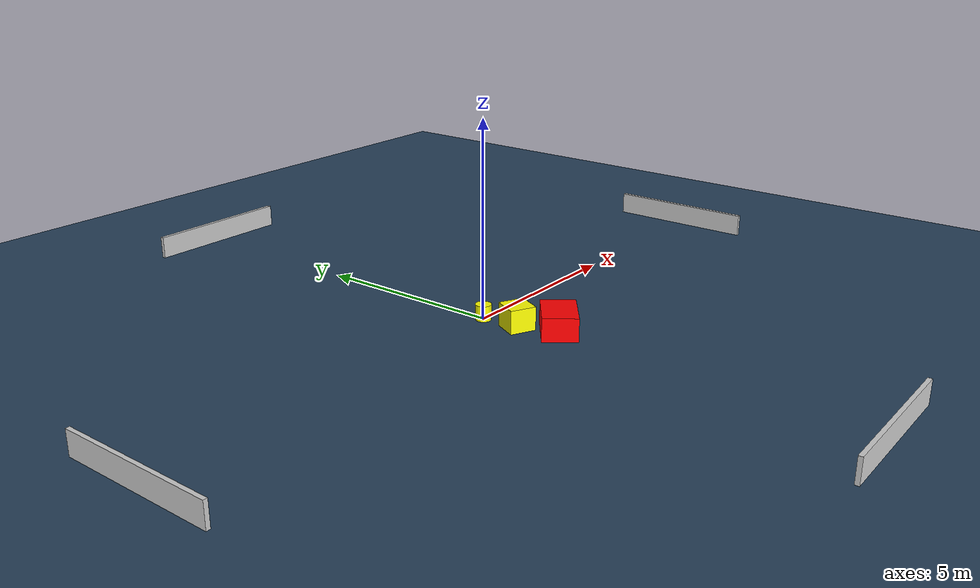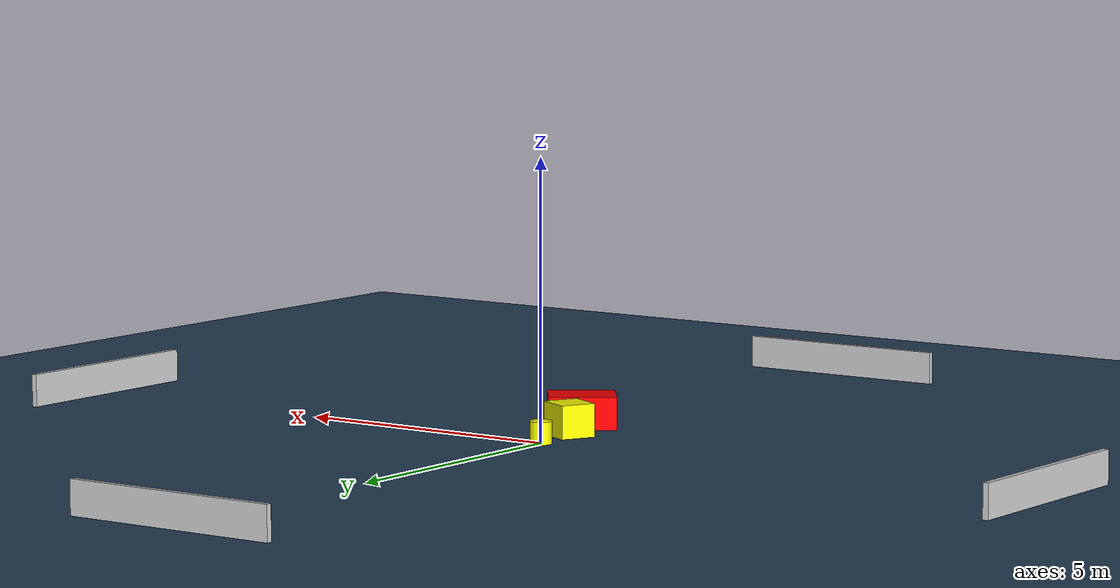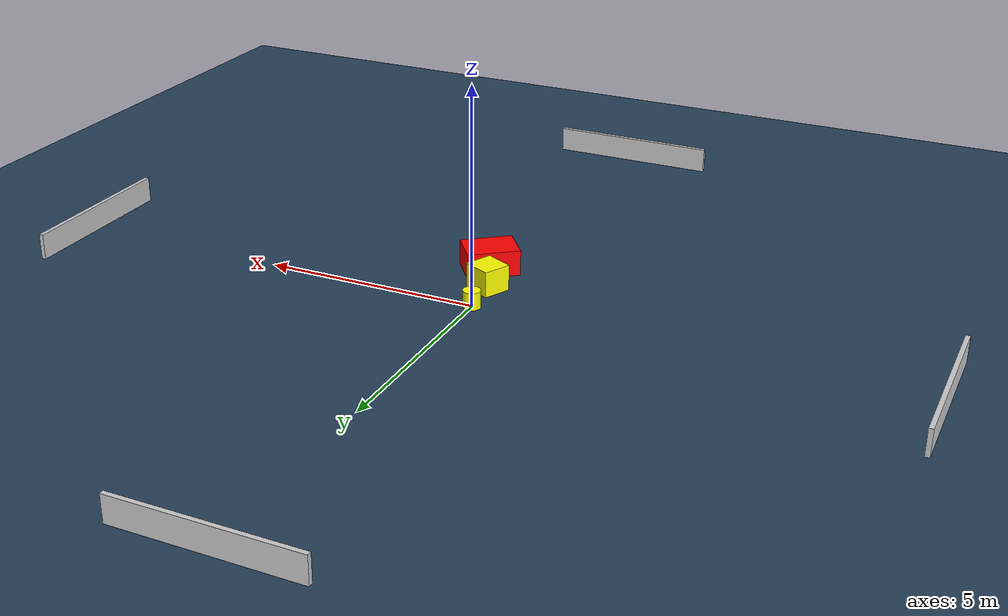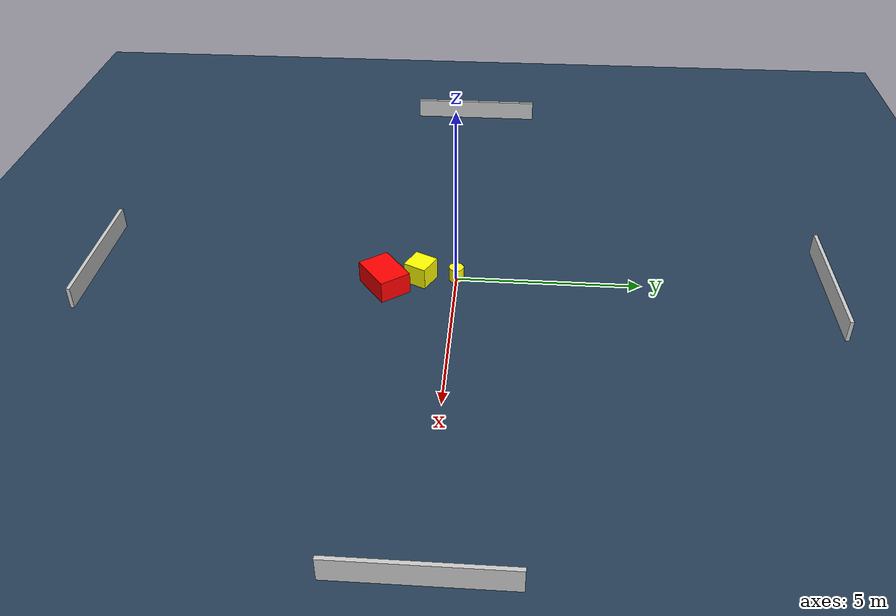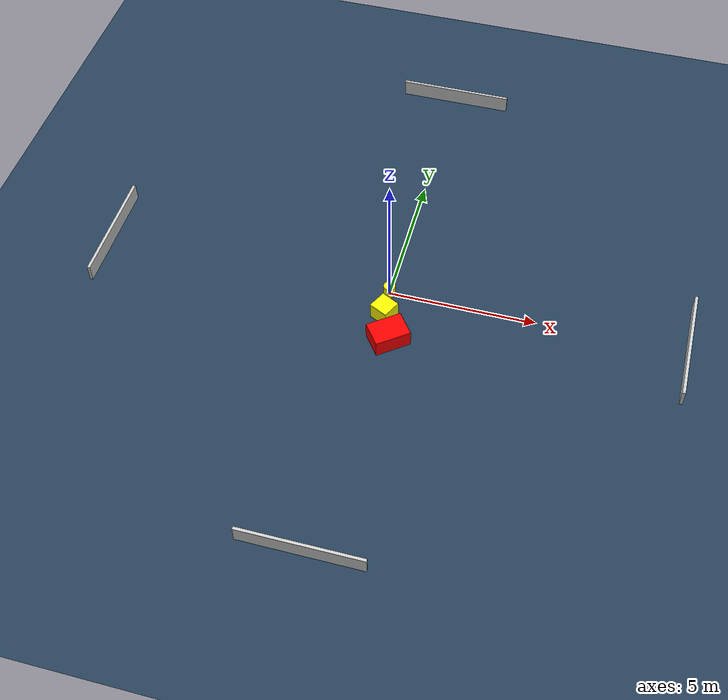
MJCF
<?xml version="1.0" ?>
<mujoco model="generated_environment">
  <option timestep="0.01" integrator="RK4" cone="elliptic"/>
  <default>
    <geom density="1"/>
  </default>
  <asset>
    <texture builtin="gradient" height="3072" name="skybox" rgb1="0.3 0.5 0.7" rgb2="0 0 0" type="skybox" width="512"/>
    <texture builtin="checker" height="300" name="groundplane" rgb1="0.2 0.3 0.4" rgb2="0.1 0.2 0.3" type="2d" width="300"/>
    <material name="groundplane" reflectance="0.2" texrepeat="5 5" texture="groundplane"/>
  </asset>
  <worldbody>
    <light dir="0 0 -1" directional="true" pos="0 0 1.5"/>
    <geom condim="3" friction="0.5 0.005 0.001" material="groundplane" name="floor" pos="0 0 0" size="0 0 0.05" type="plane"/>
    <body name="walls">
      <geom name="wall_1" condim="4" pos="-10.0 0.0 0.3" rgba="0.800000011920929 0.800000011920929 0.800000011920929 1.0" size="0.05 2.0 0.3" type="box"/>
      <geom name="wall_2" condim="4" pos="10.0 0.0 0.3" rgba="0.800000011920929 0.800000011920929 0.800000011920929 1.0" size="0.05 2.0 0.3" type="box"/>
      <geom name="wall_3" condim="4" pos="0.0 -10.0 0.3" rgba="0.800000011920929 0.800000011920929 0.800000011920929 1.0" size="2.0 0.05 0.3" type="box"/>
      <geom name="wall_4" condim="4" pos="0.0 10.0 0.3" rgba="0.800000011920929 0.800000011920929 0.800000011920929 1.0" size="2.0 0.05 0.3" type="box"/>
    </body>
    <body name="robot">
      <joint name="joint_x" type="slide" pos="0 0 0" axis="1 0 0"/>
      <joint name="joint_y" type="slide" pos="0 0 0" axis="0 1 0"/>
      <geom name="robot" type="cylinder" pos="0.0 0.0 0.2" size="0.2 0.2 0.0" mass="5.0" friction="1.0 0.005 0.0001" condim="4" rgba="1.0 1.0 0.0 1.0"/>
    </body>
    <body name="obstacle_1_movable">
      <geom name="obstacle_1_movable" condim="4" pos="0.07484309155176432 -0.9674266555470149 0.3" euler="0 0 63.730748074326286" friction="0.0 0.005 0.001" rgba="1.0 1.0 0.0 1.0" size="0.32788168787963445 0.33319028239629433 0.3" type="box" mass="0.1"/>
      <joint type="free"/>
    </body>
    <body name="obstacle_2_static">
      <geom name="obstacle_2_static" condim="4" pos="0.46249399492705545 -1.916287072495947 0.3" euler="0 0 307.1963189307095" friction="0.0 0.005 0.001" rgba="1.0 0.0 0.0 1.0" size="0.43901167859352014 0.607827198303414 0.3" type="box"/>
    </body>
  </worldbody>
  <actuator>
    <motor name="actuator_x" joint="joint_x" gear="1" ctrlrange="-1 1"/>
    <motor name="actuator_y" joint="joint_y" gear="1" ctrlrange="-1 1"/>
  </actuator>
</mujoco>
